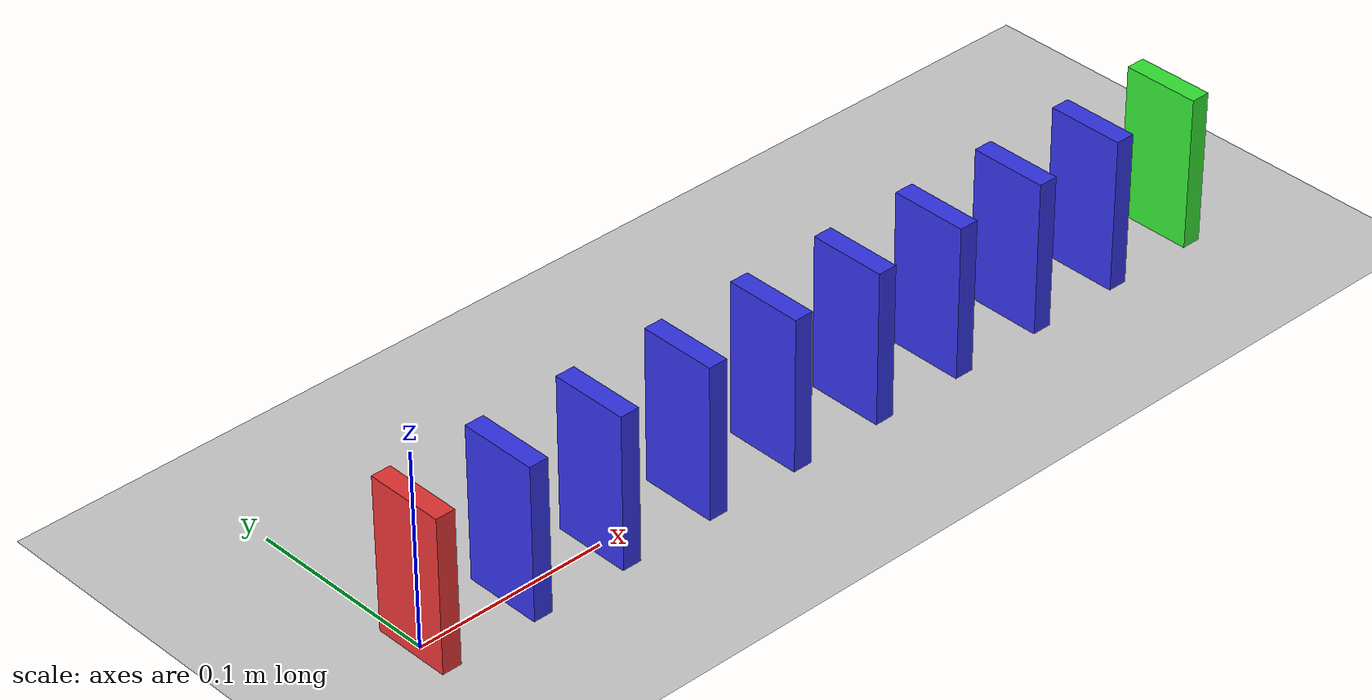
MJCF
<mujoco model="domino_chain">
  <option timestep="0.002"/>
  <worldbody>
    <light name="sun" pos="0.2 -0.5 1.5" dir="0 0.3 -1"/>
    <geom name="floor" type="plane" size="2 2 0.1" rgba="0.8 0.8 0.8 1" friction="1 0.005 0.0001"/>
    <body name="domino1" pos="0 0 0.04">
      <freejoint name="j1"/>
      <geom name="domino1_geom" type="box" size="0.005 0.02 0.04" rgba="0.9 0.2 0.2 1" friction="0.8 0.005 0.0001"/>
    </body>
    <body name="domino2" pos="0.05 0 0.04">
      <freejoint name="j2"/>
      <geom name="domino2_geom" type="box" size="0.005 0.02 0.04" rgba="0.2 0.2 0.9 1" friction="0.8 0.005 0.0001"/>
    </body>
    <body name="domino3" pos="0.10 0 0.04">
      <freejoint name="j3"/>
      <geom name="domino3_geom" type="box" size="0.005 0.02 0.04" rgba="0.2 0.2 0.9 1" friction="0.8 0.005 0.0001"/>
    </body>
    <body name="domino4" pos="0.15 0 0.04">
      <freejoint name="j4"/>
      <geom name="domino4_geom" type="box" size="0.005 0.02 0.04" rgba="0.2 0.2 0.9 1" friction="0.8 0.005 0.0001"/>
    </body>
    <body name="domino5" pos="0.20 0 0.04">
      <freejoint name="j5"/>
      <geom name="domino5_geom" type="box" size="0.005 0.02 0.04" rgba="0.2 0.2 0.9 1" friction="0.8 0.005 0.0001"/>
    </body>
    <body name="domino6" pos="0.25 0 0.04">
      <freejoint name="j6"/>
      <geom name="domino6_geom" type="box" size="0.005 0.02 0.04" rgba="0.2 0.2 0.9 1" friction="0.8 0.005 0.0001"/>
    </body>
    <body name="domino7" pos="0.30 0 0.04">
      <freejoint name="j7"/>
      <geom name="domino7_geom" type="box" size="0.005 0.02 0.04" rgba="0.2 0.2 0.9 1" friction="0.8 0.005 0.0001"/>
    </body>
    <body name="domino8" pos="0.35 0 0.04">
      <freejoint name="j8"/>
      <geom name="domino8_geom" type="box" size="0.005 0.02 0.04" rgba="0.2 0.2 0.9 1" friction="0.8 0.005 0.0001"/>
    </body>
    <body name="domino9" pos="0.40 0 0.04">
      <freejoint name="j9"/>
      <geom name="domino9_geom" type="box" size="0.005 0.02 0.04" rgba="0.2 0.2 0.9 1" friction="0.8 0.005 0.0001"/>
    </body>
    <body name="domino10" pos="0.45 0 0.04">
      <freejoint name="j10"/>
      <geom name="domino10_geom" type="box" size="0.005 0.02 0.04" rgba="0.2 0.9 0.2 1" friction="0.8 0.005 0.0001"/>
    </body>
  </worldbody>
  <keyframe>
    <key name="start" qpos="0.010051 0 0.039993 0.992198 0 0.124675 0  0.05 0 0.04 1 0 0 0  0.10 0 0.04 1 0 0 0  0.15 0 0.04 1 0 0 0  0.20 0 0.04 1 0 0 0  0.25 0 0.04 1 0 0 0  0.30 0 0.04 1 0 0 0  0.35 0 0.04 1 0 0 0  0.40 0 0.04 1 0 0 0  0.45 0 0.04 1 0 0 0" qvel="0.039993 0 -0.005051 0 1 0  0 0 0 0 0 0  0 0 0 0 0 0  0 0 0 0 0 0  0 0 0 0 0 0  0 0 0 0 0 0  0 0 0 0 0 0  0 0 0 0 0 0  0 0 0 0 0 0  0 0 0 0 0 0"/>
  </keyframe>
</mujoco>
